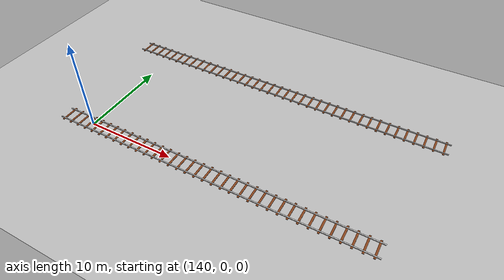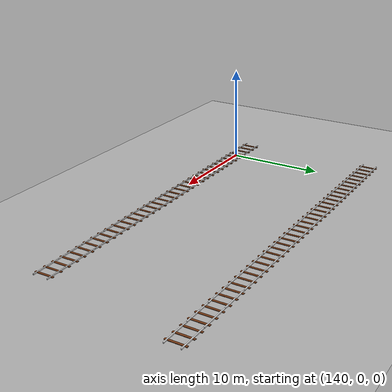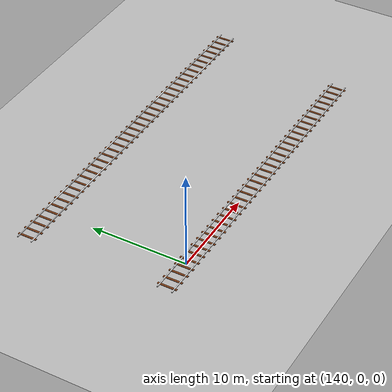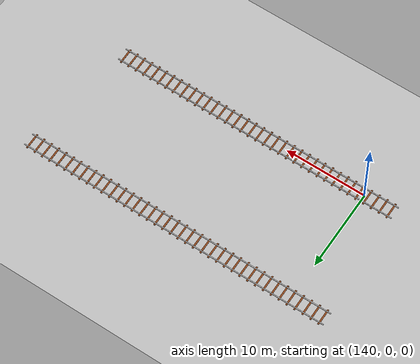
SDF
<sdf version="1.10">
 <world name="myworld">
  <model name="ground_plane">
   <static>true</static>
   <link name="link">
    <collision name="collision">
     <geometry><plane><normal>0 0 1</normal><size>1000 1000</size></plane></geometry>
    </collision>
    <visual name="visual">
     <geometry><plane><normal>0 0 1</normal><size>1000 1000</size></plane></geometry>
     <material>
      <ambient>0.699999988 0.699999988 0.699999988 1</ambient>
      <diffuse>0.699999988 0.699999988 0.699999988 1</diffuse>
     </material>
    </visual>
    <inertial>
     <mass>1</mass>
     <inertia><ixx>1</ixx><ixy>0</ixy><ixz>0</ixz><iyy>1</iyy><iyz>0</iyz><izz>1</izz></inertia>
    </inertial>
   </link>
  </model>
  <model name="rail12_35">
   <static>true</static>
   <pose>137.59800000000001 -0.0277518 0 0 0 0</pose>
   <link name="rail_link">
    <visual name="rail_left">
     <pose>0 0.75 0.050000000000000003 0 0 0</pose>
     <geometry><box><size>3 0.10000000000000001 0.10000000000000001</size></box></geometry>
     <material>
      <ambient>0.800000012 0.800000012 0.800000012 1</ambient>
      <diffuse>0.899999976 0.899999976 0.899999976 1</diffuse>
     </material>
    </visual>
    <visual name="rail_right">
     <pose>0 -0.75 0.050000000000000003 0 0 0</pose>
     <geometry><box><size>3 0.10000000000000001 0.10000000000000001</size></box></geometry>
     <material>
      <ambient>0.800000012 0.800000012 0.800000012 1</ambient>
      <diffuse>0.899999976 0.899999976 0.899999976 1</diffuse>
     </material>
    </visual>
    <visual name="traverse_1">
     <pose>1 0 0.025000000000000001 0 0 0</pose>
     <geometry><box><size>0.20000000000000001 2 0.050000000000000003</size></box></geometry>
     <material>
      <ambient>0.400000006 0.200000003 0.100000001 1</ambient>
      <diffuse>0.5 0.25 0.100000001 1</diffuse>
     </material>
    </visual>
    <visual name="traverse_2">
     <pose>0 0 0.025000000000000001 0 0 0</pose>
     <geometry><box><size>0.20000000000000001 2 0.050000000000000003</size></box></geometry>
     <material>
      <ambient>0.400000006 0.200000003 0.100000001 1</ambient>
      <diffuse>0.5 0.25 0.100000001 1</diffuse>
     </material>
    </visual>
    <visual name="traverse_3">
     <pose>-1 0 0.025000000000000001 0 0 0</pose>
     <geometry><box><size>0.20000000000000001 2 0.050000000000000003</size></box></geometry>
     <material>
      <ambient>0.400000006 0.200000003 0.100000001 1</ambient>
      <diffuse>0.5 0.25 0.100000001 1</diffuse>
     </material>
    </visual>
   </link>
  </model>
  <model name="rail12_36">
   <static>true</static>
   <pose>140.59899999999999 -0.027714300000000001 0 0 0 0</pose>
   <link name="rail_link">
    <visual name="rail_left">
     <pose>0 0.75 0.050000000000000003 0 0 0</pose>
     <geometry><box><size>3 0.10000000000000001 0.10000000000000001</size></box></geometry>
     <material>
      <ambient>0.800000012 0.800000012 0.800000012 1</ambient>
      <diffuse>0.899999976 0.899999976 0.899999976 1</diffuse>
     </material>
    </visual>
    <visual name="rail_right">
     <pose>0 -0.75 0.050000000000000003 0 0 0</pose>
     <geometry><box><size>3 0.10000000000000001 0.10000000000000001</size></box></geometry>
     <material>
      <ambient>0.800000012 0.800000012 0.800000012 1</ambient>
      <diffuse>0.899999976 0.899999976 0.899999976 1</diffuse>
     </material>
    </visual>
    <visual name="traverse_1">
     <pose>1 0 0.025000000000000001 0 0 0</pose>
     <geometry><box><size>0.20000000000000001 2 0.050000000000000003</size></box></geometry>
     <material>
      <ambient>0.400000006 0.200000003 0.100000001 1</ambient>
      <diffuse>0.5 0.25 0.100000001 1</diffuse>
     </material>
    </visual>
    <visual name="traverse_2">
     <pose>0 0 0.025000000000000001 0 0 0</pose>
     <geometry><box><size>0.20000000000000001 2 0.050000000000000003</size></box></geometry>
     <material>
      <ambient>0.400000006 0.200000003 0.100000001 1</ambient>
      <diffuse>0.5 0.25 0.100000001 1</diffuse>
     </material>
    </visual>
    <visual name="traverse_3">
     <pose>-1 0 0.025000000000000001 0 0 0</pose>
     <geometry><box><size>0.20000000000000001 2 0.050000000000000003</size></box></geometry>
     <material>
      <ambient>0.400000006 0.200000003 0.100000001 1</ambient>
      <diffuse>0.5 0.25 0.100000001 1</diffuse>
     </material>
    </visual>
   </link>
  </model>
  <model name="rail12_37">
   <static>true</static>
   <pose>143.583 -0.0283121 0 0 0 0</pose>
   <link name="rail_link">
    <visual name="rail_left">
     <pose>0 0.75 0.050000000000000003 0 0 0</pose>
     <geometry><box><size>3 0.10000000000000001 0.10000000000000001</size></box></geometry>
     <material>
      <ambient>0.800000012 0.800000012 0.800000012 1</ambient>
      <diffuse>0.899999976 0.899999976 0.899999976 1</diffuse>
     </material>
    </visual>
    <visual name="rail_right">
     <pose>0 -0.75 0.050000000000000003 0 0 0</pose>
     <geometry><box><size>3 0.10000000000000001 0.10000000000000001</size></box></geometry>
     <material>
      <ambient>0.800000012 0.800000012 0.800000012 1</ambient>
      <diffuse>0.899999976 0.899999976 0.899999976 1</diffuse>
     </material>
    </visual>
    <visual name="traverse_1">
     <pose>1 0 0.025000000000000001 0 0 0</pose>
     <geometry><box><size>0.20000000000000001 2 0.050000000000000003</size></box></geometry>
     <material>
      <ambient>0.400000006 0.200000003 0.100000001 1</ambient>
      <diffuse>0.5 0.25 0.100000001 1</diffuse>
     </material>
    </visual>
    <visual name="traverse_2">
     <pose>0 0 0.025000000000000001 0 0 0</pose>
     <geometry><box><size>0.20000000000000001 2 0.050000000000000003</size></box></geometry>
     <material>
      <ambient>0.400000006 0.200000003 0.100000001 1</ambient>
      <diffuse>0.5 0.25 0.100000001 1</diffuse>
     </material>
    </visual>
    <visual name="traverse_3">
     <pose>-1 0 0.025000000000000001 0 0 0</pose>
     <geometry><box><size>0.20000000000000001 2 0.050000000000000003</size></box></geometry>
     <material>
      <ambient>0.400000006 0.200000003 0.100000001 1</ambient>
      <diffuse>0.5 0.25 0.100000001 1</diffuse>
     </material>
    </visual>
   </link>
  </model>
  <model name="rail12_37_1">
   <static>true</static>
   <pose>146.566 -0.0293624 0 0 0 0</pose>
   <link name="rail_link">
    <visual name="rail_left">
     <pose>0 0.75 0.050000000000000003 0 0 0</pose>
     <geometry><box><size>3 0.10000000000000001 0.10000000000000001</size></box></geometry>
     <material>
      <ambient>0.800000012 0.800000012 0.800000012 1</ambient>
      <diffuse>0.899999976 0.899999976 0.899999976 1</diffuse>
     </material>
    </visual>
    <visual name="rail_right">
     <pose>0 -0.75 0.050000000000000003 0 0 0</pose>
     <geometry><box><size>3 0.10000000000000001 0.10000000000000001</size></box></geometry>
     <material>
      <ambient>0.800000012 0.800000012 0.800000012 1</ambient>
      <diffuse>0.899999976 0.899999976 0.899999976 1</diffuse>
     </material>
    </visual>
    <visual name="traverse_1">
     <pose>1 0 0.025000000000000001 0 0 0</pose>
     <geometry><box><size>0.20000000000000001 2 0.050000000000000003</size></box></geometry>
     <material>
      <ambient>0.400000006 0.200000003 0.100000001 1</ambient>
      <diffuse>0.5 0.25 0.100000001 1</diffuse>
     </material>
    </visual>
    <visual name="traverse_2">
     <pose>0 0 0.025000000000000001 0 0 0</pose>
     <geometry><box><size>0.20000000000000001 2 0.050000000000000003</size></box></geometry>
     <material>
      <ambient>0.400000006 0.200000003 0.100000001 1</ambient>
      <diffuse>0.5 0.25 0.100000001 1</diffuse>
     </material>
    </visual>
    <visual name="traverse_3">
     <pose>-1 0 0.025000000000000001 0 0 0</pose>
     <geometry><box><size>0.20000000000000001 2 0.050000000000000003</size></box></geometry>
     <material>
      <ambient>0.400000006 0.200000003 0.100000001 1</ambient>
      <diffuse>0.5 0.25 0.100000001 1</diffuse>
     </material>
    </visual>
   </link>
  </model>
  <model name="rail12_37_2">
   <static>true</static>
   <pose>149.56200000000001 -0.028550800000000001 0 0 0 0</pose>
   <link name="rail_link">
    <visual name="rail_left">
     <pose>0 0.75 0.050000000000000003 0 0 0</pose>
     <geometry><box><size>3 0.10000000000000001 0.10000000000000001</size></box></geometry>
     <material>
      <ambient>0.800000012 0.800000012 0.800000012 1</ambient>
      <diffuse>0.899999976 0.899999976 0.899999976 1</diffuse>
     </material>
    </visual>
    <visual name="rail_right">
     <pose>0 -0.75 0.050000000000000003 0 0 0</pose>
     <geometry><box><size>3 0.10000000000000001 0.10000000000000001</size></box></geometry>
     <material>
      <ambient>0.800000012 0.800000012 0.800000012 1</ambient>
      <diffuse>0.899999976 0.899999976 0.899999976 1</diffuse>
     </material>
    </visual>
    <visual name="traverse_1">
     <pose>1 0 0.025000000000000001 0 0 0</pose>
     <geometry><box><size>0.20000000000000001 2 0.050000000000000003</size></box></geometry>
     <material>
      <ambient>0.400000006 0.200000003 0.100000001 1</ambient>
      <diffuse>0.5 0.25 0.100000001 1</diffuse>
     </material>
    </visual>
    <visual name="traverse_2">
     <pose>0 0 0.025000000000000001 0 0 0</pose>
     <geometry><box><size>0.20000000000000001 2 0.050000000000000003</size></box></geometry>
     <material>
      <ambient>0.400000006 0.200000003 0.100000001 1</ambient>
      <diffuse>0.5 0.25 0.100000001 1</diffuse>
     </material>
    </visual>
    <visual name="traverse_3">
     <pose>-1 0 0.025000000000000001 0 0 0</pose>
     <geometry><box><size>0.20000000000000001 2 0.050000000000000003</size></box></geometry>
     <material>
      <ambient>0.400000006 0.200000003 0.100000001 1</ambient>
      <diffuse>0.5 0.25 0.100000001 1</diffuse>
     </material>
    </visual>
   </link>
  </model>
  <model name="rail12_37_3">
   <static>true</static>
   <pose>152.565 -0.029487599999999999 0 0 0 0</pose>
   <link name="rail_link">
    <visual name="rail_left">
     <pose>0 0.75 0.050000000000000003 0 0 0</pose>
     <geometry><box><size>3 0.10000000000000001 0.10000000000000001</size></box></geometry>
     <material>
      <ambient>0.800000012 0.800000012 0.800000012 1</ambient>
      <diffuse>0.899999976 0.899999976 0.899999976 1</diffuse>
     </material>
    </visual>
    <visual name="rail_right">
     <pose>0 -0.75 0.050000000000000003 0 0 0</pose>
     <geometry><box><size>3 0.10000000000000001 0.10000000000000001</size></box></geometry>
     <material>
      <ambient>0.800000012 0.800000012 0.800000012 1</ambient>
      <diffuse>0.899999976 0.899999976 0.899999976 1</diffuse>
     </material>
    </visual>
    <visual name="traverse_1">
     <pose>1 0 0.025000000000000001 0 0 0</pose>
     <geometry><box><size>0.20000000000000001 2 0.050000000000000003</size></box></geometry>
     <material>
      <ambient>0.400000006 0.200000003 0.100000001 1</ambient>
      <diffuse>0.5 0.25 0.100000001 1</diffuse>
     </material>
    </visual>
    <visual name="traverse_2">
     <pose>0 0 0.025000000000000001 0 0 0</pose>
     <geometry><box><size>0.20000000000000001 2 0.050000000000000003</size></box></geometry>
     <material>
      <ambient>0.400000006 0.200000003 0.100000001 1</ambient>
      <diffuse>0.5 0.25 0.100000001 1</diffuse>
     </material>
    </visual>
    <visual name="traverse_3">
     <pose>-1 0 0.025000000000000001 0 0 0</pose>
     <geometry><box><size>0.20000000000000001 2 0.050000000000000003</size></box></geometry>
     <material>
      <ambient>0.400000006 0.200000003 0.100000001 1</ambient>
      <diffuse>0.5 0.25 0.100000001 1</diffuse>
     </material>
    </visual>
   </link>
  </model>
  <model name="rail12_37_4">
   <static>true</static>
   <pose>155.566 -0.026680100000000002 0 0 0 0</pose>
   <link name="rail_link">
    <visual name="rail_left">
     <pose>0 0.75 0.050000000000000003 0 0 0</pose>
     <geometry><box><size>3 0.10000000000000001 0.10000000000000001</size></box></geometry>
     <material>
      <ambient>0.800000012 0.800000012 0.800000012 1</ambient>
      <diffuse>0.899999976 0.899999976 0.899999976 1</diffuse>
     </material>
    </visual>
    <visual name="rail_right">
     <pose>0 -0.75 0.050000000000000003 0 0 0</pose>
     <geometry><box><size>3 0.10000000000000001 0.10000000000000001</size></box></geometry>
     <material>
      <ambient>0.800000012 0.800000012 0.800000012 1</ambient>
      <diffuse>0.899999976 0.899999976 0.899999976 1</diffuse>
     </material>
    </visual>
    <visual name="traverse_1">
     <pose>1 0 0.025000000000000001 0 0 0</pose>
     <geometry><box><size>0.20000000000000001 2 0.050000000000000003</size></box></geometry>
     <material>
      <ambient>0.400000006 0.200000003 0.100000001 1</ambient>
      <diffuse>0.5 0.25 0.100000001 1</diffuse>
     </material>
    </visual>
    <visual name="traverse_2">
     <pose>0 0 0.025000000000000001 0 0 0</pose>
     <geometry><box><size>0.20000000000000001 2 0.050000000000000003</size></box></geometry>
     <material>
      <ambient>0.400000006 0.200000003 0.100000001 1</ambient>
      <diffuse>0.5 0.25 0.100000001 1</diffuse>
     </material>
    </visual>
    <visual name="traverse_3">
     <pose>-1 0 0.025000000000000001 0 0 0</pose>
     <geometry><box><size>0.20000000000000001 2 0.050000000000000003</size></box></geometry>
     <material>
      <ambient>0.400000006 0.200000003 0.100000001 1</ambient>
      <diffuse>0.5 0.25 0.100000001 1</diffuse>
     </material>
    </visual>
   </link>
  </model>
  <model name="rail12_37_5">
   <static>true</static>
   <pose>158.55699999999999 -0.0285592 0 0 0 0</pose>
   <link name="rail_link">
    <visual name="rail_left">
     <pose>0 0.75 0.050000000000000003 0 0 0</pose>
     <geometry><box><size>3 0.10000000000000001 0.10000000000000001</size></box></geometry>
     <material>
      <ambient>0.800000012 0.800000012 0.800000012 1</ambient>
      <diffuse>0.899999976 0.899999976 0.899999976 1</diffuse>
     </material>
    </visual>
    <visual name="rail_right">
     <pose>0 -0.75 0.050000000000000003 0 0 0</pose>
     <geometry><box><size>3 0.10000000000000001 0.10000000000000001</size></box></geometry>
     <material>
      <ambient>0.800000012 0.800000012 0.800000012 1</ambient>
      <diffuse>0.899999976 0.899999976 0.899999976 1</diffuse>
     </material>
    </visual>
    <visual name="traverse_1">
     <pose>1 0 0.025000000000000001 0 0 0</pose>
     <geometry><box><size>0.20000000000000001 2 0.050000000000000003</size></box></geometry>
     <material>
      <ambient>0.400000006 0.200000003 0.100000001 1</ambient>
      <diffuse>0.5 0.25 0.100000001 1</diffuse>
     </material>
    </visual>
    <visual name="traverse_2">
     <pose>0 0 0.025000000000000001 0 0 0</pose>
     <geometry><box><size>0.20000000000000001 2 0.050000000000000003</size></box></geometry>
     <material>
      <ambient>0.400000006 0.200000003 0.100000001 1</ambient>
      <diffuse>0.5 0.25 0.100000001 1</diffuse>
     </material>
    </visual>
    <visual name="traverse_3">
     <pose>-1 0 0.025000000000000001 0 0 0</pose>
     <geometry><box><size>0.20000000000000001 2 0.050000000000000003</size></box></geometry>
     <material>
      <ambient>0.400000006 0.200000003 0.100000001 1</ambient>
      <diffuse>0.5 0.25 0.100000001 1</diffuse>
     </material>
    </visual>
   </link>
  </model>
  <model name="rail12_37_6">
   <static>true</static>
   <pose>161.55099999999999 -0.028076899999999998 0 0 0 0</pose>
   <link name="rail_link">
    <visual name="rail_left">
     <pose>0 0.75 0.050000000000000003 0 0 0</pose>
     <geometry><box><size>3 0.10000000000000001 0.10000000000000001</size></box></geometry>
     <material>
      <ambient>0.800000012 0.800000012 0.800000012 1</ambient>
      <diffuse>0.899999976 0.899999976 0.899999976 1</diffuse>
     </material>
    </visual>
    <visual name="rail_right">
     <pose>0 -0.75 0.050000000000000003 0 0 0</pose>
     <geometry><box><size>3 0.10000000000000001 0.10000000000000001</size></box></geometry>
     <material>
      <ambient>0.800000012 0.800000012 0.800000012 1</ambient>
      <diffuse>0.899999976 0.899999976 0.899999976 1</diffuse>
     </material>
    </visual>
    <visual name="traverse_1">
     <pose>1 0 0.025000000000000001 0 0 0</pose>
     <geometry><box><size>0.20000000000000001 2 0.050000000000000003</size></box></geometry>
     <material>
      <ambient>0.400000006 0.200000003 0.100000001 1</ambient>
      <diffuse>0.5 0.25 0.100000001 1</diffuse>
     </material>
    </visual>
    <visual name="traverse_2">
     <pose>0 0 0.025000000000000001 0 0 0</pose>
     <geometry><box><size>0.20000000000000001 2 0.050000000000000003</size></box></geometry>
     <material>
      <ambient>0.400000006 0.200000003 0.100000001 1</ambient>
      <diffuse>0.5 0.25 0.100000001 1</diffuse>
     </material>
    </visual>
    <visual name="traverse_3">
     <pose>-1 0 0.025000000000000001 0 0 0</pose>
     <geometry><box><size>0.20000000000000001 2 0.050000000000000003</size></box></geometry>
     <material>
      <ambient>0.400000006 0.200000003 0.100000001 1</ambient>
      <diffuse>0.5 0.25 0.100000001 1</diffuse>
     </material>
    </visual>
   </link>
  </model>
  <model name="rail12_37_7">
   <static>true</static>
   <pose>164.547 -0.0255289 0 0 0 0</pose>
   <link name="rail_link">
    <visual name="rail_left">
     <pose>0 0.75 0.050000000000000003 0 0 0</pose>
     <geometry><box><size>3 0.10000000000000001 0.10000000000000001</size></box></geometry>
     <material>
      <ambient>0.800000012 0.800000012 0.800000012 1</ambient>
      <diffuse>0.899999976 0.899999976 0.899999976 1</diffuse>
     </material>
    </visual>
    <visual name="rail_right">
     <pose>0 -0.75 0.050000000000000003 0 0 0</pose>
     <geometry><box><size>3 0.10000000000000001 0.10000000000000001</size></box></geometry>
     <material>
      <ambient>0.800000012 0.800000012 0.800000012 1</ambient>
      <diffuse>0.899999976 0.899999976 0.899999976 1</diffuse>
     </material>
    </visual>
    <visual name="traverse_1">
     <pose>1 0 0.025000000000000001 0 0 0</pose>
     <geometry><box><size>0.20000000000000001 2 0.050000000000000003</size></box></geometry>
     <material>
      <ambient>0.400000006 0.200000003 0.100000001 1</ambient>
      <diffuse>0.5 0.25 0.100000001 1</diffuse>
     </material>
    </visual>
    <visual name="traverse_2">
     <pose>0 0 0.025000000000000001 0 0 0</pose>
     <geometry><box><size>0.20000000000000001 2 0.050000000000000003</size></box></geometry>
     <material>
      <ambient>0.400000006 0.200000003 0.100000001 1</ambient>
      <diffuse>0.5 0.25 0.100000001 1</diffuse>
     </material>
    </visual>
    <visual name="traverse_3">
     <pose>-1 0 0.025000000000000001 0 0 0</pose>
     <geometry><box><size>0.20000000000000001 2 0.050000000000000003</size></box></geometry>
     <material>
      <ambient>0.400000006 0.200000003 0.100000001 1</ambient>
      <diffuse>0.5 0.25 0.100000001 1</diffuse>
     </material>
    </visual>
   </link>
  </model>
  <model name="rail12_37_8">
   <static>true</static>
   <pose>167.542 -0.027460600000000002 0 0 0 0</pose>
   <link name="rail_link">
    <visual name="rail_left">
     <pose>0 0.75 0.050000000000000003 0 0 0</pose>
     <geometry><box><size>3 0.10000000000000001 0.10000000000000001</size></box></geometry>
     <material>
      <ambient>0.800000012 0.800000012 0.800000012 1</ambient>
      <diffuse>0.899999976 0.899999976 0.899999976 1</diffuse>
     </material>
    </visual>
    <visual name="rail_right">
     <pose>0 -0.75 0.050000000000000003 0 0 0</pose>
     <geometry><box><size>3 0.10000000000000001 0.10000000000000001</size></box></geometry>
     <material>
      <ambient>0.800000012 0.800000012 0.800000012 1</ambient>
      <diffuse>0.899999976 0.899999976 0.899999976 1</diffuse>
     </material>
    </visual>
    <visual name="traverse_1">
     <pose>1 0 0.025000000000000001 0 0 0</pose>
     <geometry><box><size>0.20000000000000001 2 0.050000000000000003</size></box></geometry>
     <material>
      <ambient>0.400000006 0.200000003 0.100000001 1</ambient>
      <diffuse>0.5 0.25 0.100000001 1</diffuse>
     </material>
    </visual>
    <visual name="traverse_2">
     <pose>0 0 0.025000000000000001 0 0 0</pose>
     <geometry><box><size>0.20000000000000001 2 0.050000000000000003</size></box></geometry>
     <material>
      <ambient>0.400000006 0.200000003 0.100000001 1</ambient>
      <diffuse>0.5 0.25 0.100000001 1</diffuse>
     </material>
    </visual>
    <visual name="traverse_3">
     <pose>-1 0 0.025000000000000001 0 0 0</pose>
     <geometry><box><size>0.20000000000000001 2 0.050000000000000003</size></box></geometry>
     <material>
      <ambient>0.400000006 0.200000003 0.100000001 1</ambient>
      <diffuse>0.5 0.25 0.100000001 1</diffuse>
     </material>
    </visual>
   </link>
  </model>
  <model name="rail12_37_9">
   <static>true</static>
   <pose>170.53700000000001 -0.027081399999999999 0 0 0 0</pose>
   <link name="rail_link">
    <visual name="rail_left">
     <pose>0 0.75 0.050000000000000003 0 0 0</pose>
     <geometry><box><size>3 0.10000000000000001 0.10000000000000001</size></box></geometry>
     <material>
      <ambient>0.800000012 0.800000012 0.800000012 1</ambient>
      <diffuse>0.899999976 0.899999976 0.899999976 1</diffuse>
     </material>
    </visual>
    <visual name="rail_right">
     <pose>0 -0.75 0.050000000000000003 0 0 0</pose>
     <geometry><box><size>3 0.10000000000000001 0.10000000000000001</size></box></geometry>
     <material>
      <ambient>0.800000012 0.800000012 0.800000012 1</ambient>
      <diffuse>0.899999976 0.899999976 0.899999976 1</diffuse>
     </material>
    </visual>
    <visual name="traverse_1">
     <pose>1 0 0.025000000000000001 0 0 0</pose>
     <geometry><box><size>0.20000000000000001 2 0.050000000000000003</size></box></geometry>
     <material>
      <ambient>0.400000006 0.200000003 0.100000001 1</ambient>
      <diffuse>0.5 0.25 0.100000001 1</diffuse>
     </material>
    </visual>
    <visual name="traverse_2">
     <pose>0 0 0.025000000000000001 0 0 0</pose>
     <geometry><box><size>0.20000000000000001 2 0.050000000000000003</size></box></geometry>
     <material>
      <ambient>0.400000006 0.200000003 0.100000001 1</ambient>
      <diffuse>0.5 0.25 0.100000001 1</diffuse>
     </material>
    </visual>
    <visual name="traverse_3">
     <pose>-1 0 0.025000000000000001 0 0 0</pose>
     <geometry><box><size>0.20000000000000001 2 0.050000000000000003</size></box></geometry>
     <material>
      <ambient>0.400000006 0.200000003 0.100000001 1</ambient>
      <diffuse>0.5 0.25 0.100000001 1</diffuse>
     </material>
    </visual>
   </link>
  </model>
  <model name="rail12_37_69">
   <static>true</static>
   <pose>137.012 14.6077599999999999 0 0 0 0</pose>
   <link name="rail_link">
    <visual name="rail_left">
     <pose>0 0.75 0.050000000000000003 0 0 0</pose>
     <geometry><box><size>3 0.10000000000000001 0.10000000000000001</size></box></geometry>
     <material>
      <ambient>0.800000012 0.800000012 0.800000012 1</ambient>
      <diffuse>0.899999976 0.899999976 0.899999976 1</diffuse>
     </material>
    </visual>
    <visual name="rail_right">
     <pose>0 -0.75 0.050000000000000003 0 0 0</pose>
     <geometry><box><size>3 0.10000000000000001 0.10000000000000001</size></box></geometry>
     <material>
      <ambient>0.800000012 0.800000012 0.800000012 1</ambient>
      <diffuse>0.899999976 0.899999976 0.899999976 1</diffuse>
     </material>
    </visual>
    <visual name="traverse_1">
     <pose>1 0 0.025000000000000001 0 0 0</pose>
     <geometry><box><size>0.20000000000000001 2 0.050000000000000003</size></box></geometry>
     <material>
      <ambient>0.400000006 0.200000003 0.100000001 1</ambient>
      <diffuse>0.5 0.25 0.100000001 1</diffuse>
     </material>
    </visual>
    <visual name="traverse_2">
     <pose>0 0 0.025000000000000001 0 0 0</pose>
     <geometry><box><size>0.20000000000000001 2 0.050000000000000003</size></box></geometry>
     <material>
      <ambient>0.400000006 0.200000003 0.100000001 1</ambient>
      <diffuse>0.5 0.25 0.100000001 1</diffuse>
     </material>
    </visual>
    <visual name="traverse_3">
     <pose>-1 0 0.025000000000000001 0 0 0</pose>
     <geometry><box><size>0.20000000000000001 2 0.050000000000000003</size></box></geometry>
     <material>
      <ambient>0.400000006 0.200000003 0.100000001 1</ambient>
      <diffuse>0.5 0.25 0.100000001 1</diffuse>
     </material>
    </visual>
   </link>
  </model>
  <model name="rail12_37_70">
   <static>true</static>
   <pose>140.02099999999999 14.6110699999999998 0 0 0 0</pose>
   <link name="rail_link">
    <visual name="rail_left">
     <pose>0 0.75 0.050000000000000003 0 0 0</pose>
     <geometry><box><size>3 0.10000000000000001 0.10000000000000001</size></box></geometry>
     <material>
      <ambient>0.800000012 0.800000012 0.800000012 1</ambient>
      <diffuse>0.899999976 0.899999976 0.899999976 1</diffuse>
     </material>
    </visual>
    <visual name="rail_right">
     <pose>0 -0.75 0.050000000000000003 0 0 0</pose>
     <geometry><box><size>3 0.10000000000000001 0.10000000000000001</size></box></geometry>
     <material>
      <ambient>0.800000012 0.800000012 0.800000012 1</ambient>
      <diffuse>0.899999976 0.899999976 0.899999976 1</diffuse>
     </material>
    </visual>
    <visual name="traverse_1">
     <pose>1 0 0.025000000000000001 0 0 0</pose>
     <geometry><box><size>0.20000000000000001 2 0.050000000000000003</size></box></geometry>
     <material>
      <ambient>0.400000006 0.200000003 0.100000001 1</ambient>
      <diffuse>0.5 0.25 0.100000001 1</diffuse>
     </material>
    </visual>
    <visual name="traverse_2">
     <pose>0 0 0.025000000000000001 0 0 0</pose>
     <geometry><box><size>0.20000000000000001 2 0.050000000000000003</size></box></geometry>
     <material>
      <ambient>0.400000006 0.200000003 0.100000001 1</ambient>
      <diffuse>0.5 0.25 0.100000001 1</diffuse>
     </material>
    </visual>
    <visual name="traverse_3">
     <pose>-1 0 0.025000000000000001 0 0 0</pose>
     <geometry><box><size>0.20000000000000001 2 0.050000000000000003</size></box></geometry>
     <material>
      <ambient>0.400000006 0.200000003 0.100000001 1</ambient>
      <diffuse>0.5 0.25 0.100000001 1</diffuse>
     </material>
    </visual>
   </link>
  </model>
  <model name="rail12_37_71">
   <static>true</static>
   <pose>143.012 14.6105600000000004 0 0 0 0</pose>
   <link name="rail_link">
    <visual name="rail_left">
     <pose>0 0.75 0.050000000000000003 0 0 0</pose>
     <geometry><box><size>3 0.10000000000000001 0.10000000000000001</size></box></geometry>
     <material>
      <ambient>0.800000012 0.800000012 0.800000012 1</ambient>
      <diffuse>0.899999976 0.899999976 0.899999976 1</diffuse>
     </material>
    </visual>
    <visual name="rail_right">
     <pose>0 -0.75 0.050000000000000003 0 0 0</pose>
     <geometry><box><size>3 0.10000000000000001 0.10000000000000001</size></box></geometry>
     <material>
      <ambient>0.800000012 0.800000012 0.800000012 1</ambient>
      <diffuse>0.899999976 0.899999976 0.899999976 1</diffuse>
     </material>
    </visual>
    <visual name="traverse_1">
     <pose>1 0 0.025000000000000001 0 0 0</pose>
     <geometry><box><size>0.20000000000000001 2 0.050000000000000003</size></box></geometry>
     <material>
      <ambient>0.400000006 0.200000003 0.100000001 1</ambient>
      <diffuse>0.5 0.25 0.100000001 1</diffuse>
     </material>
    </visual>
    <visual name="traverse_2">
     <pose>0 0 0.025000000000000001 0 0 0</pose>
     <geometry><box><size>0.20000000000000001 2 0.050000000000000003</size></box></geometry>
     <material>
      <ambient>0.400000006 0.200000003 0.100000001 1</ambient>
      <diffuse>0.5 0.25 0.100000001 1</diffuse>
     </material>
    </visual>
    <visual name="traverse_3">
     <pose>-1 0 0.025000000000000001 0 0 0</pose>
     <geometry><box><size>0.20000000000000001 2 0.050000000000000003</size></box></geometry>
     <material>
      <ambient>0.400000006 0.200000003 0.100000001 1</ambient>
      <diffuse>0.5 0.25 0.100000001 1</diffuse>
     </material>
    </visual>
   </link>
  </model>
  <model name="rail12_37_72">
   <static>true</static>
   <pose>145.999 14.6132299999999997 0 0 0 0</pose>
   <link name="rail_link">
    <visual name="rail_left">
     <pose>0 0.75 0.050000000000000003 0 0 0</pose>
     <geometry><box><size>3 0.10000000000000001 0.10000000000000001</size></box></geometry>
     <material>
      <ambient>0.800000012 0.800000012 0.800000012 1</ambient>
      <diffuse>0.899999976 0.899999976 0.899999976 1</diffuse>
     </material>
    </visual>
    <visual name="rail_right">
     <pose>0 -0.75 0.050000000000000003 0 0 0</pose>
     <geometry><box><size>3 0.10000000000000001 0.10000000000000001</size></box></geometry>
     <material>
      <ambient>0.800000012 0.800000012 0.800000012 1</ambient>
      <diffuse>0.899999976 0.899999976 0.899999976 1</diffuse>
     </material>
    </visual>
    <visual name="traverse_1">
     <pose>1 0 0.025000000000000001 0 0 0</pose>
     <geometry><box><size>0.20000000000000001 2 0.050000000000000003</size></box></geometry>
     <material>
      <ambient>0.400000006 0.200000003 0.100000001 1</ambient>
      <diffuse>0.5 0.25 0.100000001 1</diffuse>
     </material>
    </visual>
    <visual name="traverse_2">
     <pose>0 0 0.025000000000000001 0 0 0</pose>
     <geometry><box><size>0.20000000000000001 2 0.050000000000000003</size></box></geometry>
     <material>
      <ambient>0.400000006 0.200000003 0.100000001 1</ambient>
      <diffuse>0.5 0.25 0.100000001 1</diffuse>
     </material>
    </visual>
    <visual name="traverse_3">
     <pose>-1 0 0.025000000000000001 0 0 0</pose>
     <geometry><box><size>0.20000000000000001 2 0.050000000000000003</size></box></geometry>
     <material>
      <ambient>0.400000006 0.200000003 0.100000001 1</ambient>
      <diffuse>0.5 0.25 0.100000001 1</diffuse>
     </material>
    </visual>
   </link>
  </model>
  <model name="rail12_37_73">
   <static>true</static>
   <pose>148.983 14.6130000000000004 0 0 0 0</pose>
   <link name="rail_link">
    <visual name="rail_left">
     <pose>0 0.75 0.050000000000000003 0 0 0</pose>
     <geometry><box><size>3 0.10000000000000001 0.10000000000000001</size></box></geometry>
     <material>
      <ambient>0.800000012 0.800000012 0.800000012 1</ambient>
      <diffuse>0.899999976 0.899999976 0.899999976 1</diffuse>
     </material>
    </visual>
    <visual name="rail_right">
     <pose>0 -0.75 0.050000000000000003 0 0 0</pose>
     <geometry><box><size>3 0.10000000000000001 0.10000000000000001</size></box></geometry>
     <material>
      <ambient>0.800000012 0.800000012 0.800000012 1</ambient>
      <diffuse>0.899999976 0.899999976 0.899999976 1</diffuse>
     </material>
    </visual>
    <visual name="traverse_1">
     <pose>1 0 0.025000000000000001 0 0 0</pose>
     <geometry><box><size>0.20000000000000001 2 0.050000000000000003</size></box></geometry>
     <material>
      <ambient>0.400000006 0.200000003 0.100000001 1</ambient>
      <diffuse>0.5 0.25 0.100000001 1</diffuse>
     </material>
    </visual>
    <visual name="traverse_2">
     <pose>0 0 0.025000000000000001 0 0 0</pose>
     <geometry><box><size>0.20000000000000001 2 0.050000000000000003</size></box></geometry>
     <material>
      <ambient>0.400000006 0.200000003 0.100000001 1</ambient>
      <diffuse>0.5 0.25 0.100000001 1</diffuse>
     </material>
    </visual>
    <visual name="traverse_3">
     <pose>-1 0 0.025000000000000001 0 0 0</pose>
     <geometry><box><size>0.20000000000000001 2 0.050000000000000003</size></box></geometry>
     <material>
      <ambient>0.400000006 0.200000003 0.100000001 1</ambient>
      <diffuse>0.5 0.25 0.100000001 1</diffuse>
     </material>
    </visual>
   </link>
  </model>
  <model name="rail12_37_74">
   <static>true</static>
   <pose>151.97999999999999 14.6094600000000003 0 0 0 0</pose>
   <link name="rail_link">
    <visual name="rail_left">
     <pose>0 0.75 0.050000000000000003 0 0 0</pose>
     <geometry><box><size>3 0.10000000000000001 0.10000000000000001</size></box></geometry>
     <material>
      <ambient>0.800000012 0.800000012 0.800000012 1</ambient>
      <diffuse>0.899999976 0.899999976 0.899999976 1</diffuse>
     </material>
    </visual>
    <visual name="rail_right">
     <pose>0 -0.75 0.050000000000000003 0 0 0</pose>
     <geometry><box><size>3 0.10000000000000001 0.10000000000000001</size></box></geometry>
     <material>
      <ambient>0.800000012 0.800000012 0.800000012 1</ambient>
      <diffuse>0.899999976 0.899999976 0.899999976 1</diffuse>
     </material>
    </visual>
    <visual name="traverse_1">
     <pose>1 0 0.025000000000000001 0 0 0</pose>
     <geometry><box><size>0.20000000000000001 2 0.050000000000000003</size></box></geometry>
     <material>
      <ambient>0.400000006 0.200000003 0.100000001 1</ambient>
      <diffuse>0.5 0.25 0.100000001 1</diffuse>
     </material>
    </visual>
    <visual name="traverse_2">
     <pose>0 0 0.025000000000000001 0 0 0</pose>
     <geometry><box><size>0.20000000000000001 2 0.050000000000000003</size></box></geometry>
     <material>
      <ambient>0.400000006 0.200000003 0.100000001 1</ambient>
      <diffuse>0.5 0.25 0.100000001 1</diffuse>
     </material>
    </visual>
    <visual name="traverse_3">
     <pose>-1 0 0.025000000000000001 0 0 0</pose>
     <geometry><box><size>0.20000000000000001 2 0.050000000000000003</size></box></geometry>
     <material>
      <ambient>0.400000006 0.200000003 0.100000001 1</ambient>
      <diffuse>0.5 0.25 0.100000001 1</diffuse>
     </material>
    </visual>
   </link>
  </model>
  <model name="rail12_37_75">
   <static>true</static>
   <pose>154.971 14.6070900000000004 0 0 0 0</pose>
   <link name="rail_link">
    <visual name="rail_left">
     <pose>0 0.75 0.050000000000000003 0 0 0</pose>
     <geometry><box><size>3 0.10000000000000001 0.10000000000000001</size></box></geometry>
     <material>
      <ambient>0.800000012 0.800000012 0.800000012 1</ambient>
      <diffuse>0.899999976 0.899999976 0.899999976 1</diffuse>
     </material>
    </visual>
    <visual name="rail_right">
     <pose>0 -0.75 0.050000000000000003 0 0 0</pose>
     <geometry><box><size>3 0.10000000000000001 0.10000000000000001</size></box></geometry>
     <material>
      <ambient>0.800000012 0.800000012 0.800000012 1</ambient>
      <diffuse>0.899999976 0.899999976 0.899999976 1</diffuse>
     </material>
    </visual>
    <visual name="traverse_1">
     <pose>1 0 0.025000000000000001 0 0 0</pose>
     <geometry><box><size>0.20000000000000001 2 0.050000000000000003</size></box></geometry>
     <material>
      <ambient>0.400000006 0.200000003 0.100000001 1</ambient>
      <diffuse>0.5 0.25 0.100000001 1</diffuse>
     </material>
    </visual>
    <visual name="traverse_2">
     <pose>0 0 0.025000000000000001 0 0 0</pose>
     <geometry><box><size>0.20000000000000001 2 0.050000000000000003</size></box></geometry>
     <material>
      <ambient>0.400000006 0.200000003 0.100000001 1</ambient>
      <diffuse>0.5 0.25 0.100000001 1</diffuse>
     </material>
    </visual>
    <visual name="traverse_3">
     <pose>-1 0 0.025000000000000001 0 0 0</pose>
     <geometry><box><size>0.20000000000000001 2 0.050000000000000003</size></box></geometry>
     <material>
      <ambient>0.400000006 0.200000003 0.100000001 1</ambient>
      <diffuse>0.5 0.25 0.100000001 1</diffuse>
     </material>
    </visual>
   </link>
  </model>
  <model name="rail12_37_76">
   <static>true</static>
   <pose>157.96799999999999 14.60989 0 0 0 0</pose>
   <link name="rail_link">
    <visual name="rail_left">
     <pose>0 0.75 0.050000000000000003 0 0 0</pose>
     <geometry><box><size>3 0.10000000000000001 0.10000000000000001</size></box></geometry>
     <material>
      <ambient>0.800000012 0.800000012 0.800000012 1</ambient>
      <diffuse>0.899999976 0.899999976 0.899999976 1</diffuse>
     </material>
    </visual>
    <visual name="rail_right">
     <pose>0 -0.75 0.050000000000000003 0 0 0</pose>
     <geometry><box><size>3 0.10000000000000001 0.10000000000000001</size></box></geometry>
     <material>
      <ambient>0.800000012 0.800000012 0.800000012 1</ambient>
      <diffuse>0.899999976 0.899999976 0.899999976 1</diffuse>
     </material>
    </visual>
    <visual name="traverse_1">
     <pose>1 0 0.025000000000000001 0 0 0</pose>
     <geometry><box><size>0.20000000000000001 2 0.050000000000000003</size></box></geometry>
     <material>
      <ambient>0.400000006 0.200000003 0.100000001 1</ambient>
      <diffuse>0.5 0.25 0.100000001 1</diffuse>
     </material>
    </visual>
    <visual name="traverse_2">
     <pose>0 0 0.025000000000000001 0 0 0</pose>
     <geometry><box><size>0.20000000000000001 2 0.050000000000000003</size></box></geometry>
     <material>
      <ambient>0.400000006 0.200000003 0.100000001 1</ambient>
      <diffuse>0.5 0.25 0.100000001 1</diffuse>
     </material>
    </visual>
    <visual name="traverse_3">
     <pose>-1 0 0.025000000000000001 0 0 0</pose>
     <geometry><box><size>0.20000000000000001 2 0.050000000000000003</size></box></geometry>
     <material>
      <ambient>0.400000006 0.200000003 0.100000001 1</ambient>
      <diffuse>0.5 0.25 0.100000001 1</diffuse>
     </material>
    </visual>
   </link>
  </model>
  <model name="rail12_37_77">
   <static>true</static>
   <pose>160.95599999999999 14.6094200000000001 0 0 0 0</pose>
   <link name="rail_link">
    <visual name="rail_left">
     <pose>0 0.75 0.050000000000000003 0 0 0</pose>
     <geometry><box><size>3 0.10000000000000001 0.10000000000000001</size></box></geometry>
     <material>
      <ambient>0.800000012 0.800000012 0.800000012 1</ambient>
      <diffuse>0.899999976 0.899999976 0.899999976 1</diffuse>
     </material>
    </visual>
    <visual name="rail_right">
     <pose>0 -0.75 0.050000000000000003 0 0 0</pose>
     <geometry><box><size>3 0.10000000000000001 0.10000000000000001</size></box></geometry>
     <material>
      <ambient>0.800000012 0.800000012 0.800000012 1</ambient>
      <diffuse>0.899999976 0.899999976 0.899999976 1</diffuse>
     </material>
    </visual>
    <visual name="traverse_1">
     <pose>1 0 0.025000000000000001 0 0 0</pose>
     <geometry><box><size>0.20000000000000001 2 0.050000000000000003</size></box></geometry>
     <material>
      <ambient>0.400000006 0.200000003 0.100000001 1</ambient>
      <diffuse>0.5 0.25 0.100000001 1</diffuse>
     </material>
    </visual>
    <visual name="traverse_2">
     <pose>0 0 0.025000000000000001 0 0 0</pose>
     <geometry><box><size>0.20000000000000001 2 0.050000000000000003</size></box></geometry>
     <material>
      <ambient>0.400000006 0.200000003 0.100000001 1</ambient>
      <diffuse>0.5 0.25 0.100000001 1</diffuse>
     </material>
    </visual>
    <visual name="traverse_3">
     <pose>-1 0 0.025000000000000001 0 0 0</pose>
     <geometry><box><size>0.20000000000000001 2 0.050000000000000003</size></box></geometry>
     <material>
      <ambient>0.400000006 0.200000003 0.100000001 1</ambient>
      <diffuse>0.5 0.25 0.100000001 1</diffuse>
     </material>
    </visual>
   </link>
  </model>
  <model name="rail12_37_78">
   <static>true</static>
   <pose>163.953 14.6078000000000001 0 0 0 0</pose>
   <link name="rail_link">
    <visual name="rail_left">
     <pose>0 0.75 0.050000000000000003 0 0 0</pose>
     <geometry><box><size>3 0.10000000000000001 0.10000000000000001</size></box></geometry>
     <material>
      <ambient>0.800000012 0.800000012 0.800000012 1</ambient>
      <diffuse>0.899999976 0.899999976 0.899999976 1</diffuse>
     </material>
    </visual>
    <visual name="rail_right">
     <pose>0 -0.75 0.050000000000000003 0 0 0</pose>
     <geometry><box><size>3 0.10000000000000001 0.10000000000000001</size></box></geometry>
     <material>
      <ambient>0.800000012 0.800000012 0.800000012 1</ambient>
      <diffuse>0.899999976 0.899999976 0.899999976 1</diffuse>
     </material>
    </visual>
    <visual name="traverse_1">
     <pose>1 0 0.025000000000000001 0 0 0</pose>
     <geometry><box><size>0.20000000000000001 2 0.050000000000000003</size></box></geometry>
     <material>
      <ambient>0.400000006 0.200000003 0.100000001 1</ambient>
      <diffuse>0.5 0.25 0.100000001 1</diffuse>
     </material>
    </visual>
    <visual name="traverse_2">
     <pose>0 0 0.025000000000000001 0 0 0</pose>
     <geometry><box><size>0.20000000000000001 2 0.050000000000000003</size></box></geometry>
     <material>
      <ambient>0.400000006 0.200000003 0.100000001 1</ambient>
      <diffuse>0.5 0.25 0.100000001 1</diffuse>
     </material>
    </visual>
    <visual name="traverse_3">
     <pose>-1 0 0.025000000000000001 0 0 0</pose>
     <geometry><box><size>0.20000000000000001 2 0.050000000000000003</size></box></geometry>
     <material>
      <ambient>0.400000006 0.200000003 0.100000001 1</ambient>
      <diffuse>0.5 0.25 0.100000001 1</diffuse>
     </material>
    </visual>
   </link>
  </model>
  <model name="rail12_37_79">
   <static>true</static>
   <pose>166.929 14.6069000000000004 0 0 0 0</pose>
   <link name="rail_link">
    <visual name="rail_left">
     <pose>0 0.75 0.050000000000000003 0 0 0</pose>
     <geometry><box><size>3 0.10000000000000001 0.10000000000000001</size></box></geometry>
     <material>
      <ambient>0.800000012 0.800000012 0.800000012 1</ambient>
      <diffuse>0.899999976 0.899999976 0.899999976 1</diffuse>
     </material>
    </visual>
    <visual name="rail_right">
     <pose>0 -0.75 0.050000000000000003 0 0 0</pose>
     <geometry><box><size>3 0.10000000000000001 0.10000000000000001</size></box></geometry>
     <material>
      <ambient>0.800000012 0.800000012 0.800000012 1</ambient>
      <diffuse>0.899999976 0.899999976 0.899999976 1</diffuse>
     </material>
    </visual>
    <visual name="traverse_1">
     <pose>1 0 0.025000000000000001 0 0 0</pose>
     <geometry><box><size>0.20000000000000001 2 0.050000000000000003</size></box></geometry>
     <material>
      <ambient>0.400000006 0.200000003 0.100000001 1</ambient>
      <diffuse>0.5 0.25 0.100000001 1</diffuse>
     </material>
    </visual>
    <visual name="traverse_2">
     <pose>0 0 0.025000000000000001 0 0 0</pose>
     <geometry><box><size>0.20000000000000001 2 0.050000000000000003</size></box></geometry>
     <material>
      <ambient>0.400000006 0.200000003 0.100000001 1</ambient>
      <diffuse>0.5 0.25 0.100000001 1</diffuse>
     </material>
    </visual>
    <visual name="traverse_3">
     <pose>-1 0 0.025000000000000001 0 0 0</pose>
     <geometry><box><size>0.20000000000000001 2 0.050000000000000003</size></box></geometry>
     <material>
      <ambient>0.400000006 0.200000003 0.100000001 1</ambient>
      <diffuse>0.5 0.25 0.100000001 1</diffuse>
     </material>
    </visual>
   </link>
  </model>
  <model name="rail12_37_80">
   <static>true</static>
   <pose>169.923 14.6043399999999997 0 0 0 0</pose>
   <link name="rail_link">
    <visual name="rail_left">
     <pose>0 0.75 0.050000000000000003 0 0 0</pose>
     <geometry><box><size>3 0.10000000000000001 0.10000000000000001</size></box></geometry>
     <material>
      <ambient>0.800000012 0.800000012 0.800000012 1</ambient>
      <diffuse>0.899999976 0.899999976 0.899999976 1</diffuse>
     </material>
    </visual>
    <visual name="rail_right">
     <pose>0 -0.75 0.050000000000000003 0 0 0</pose>
     <geometry><box><size>3 0.10000000000000001 0.10000000000000001</size></box></geometry>
     <material>
      <ambient>0.800000012 0.800000012 0.800000012 1</ambient>
      <diffuse>0.899999976 0.899999976 0.899999976 1</diffuse>
     </material>
    </visual>
    <visual name="traverse_1">
     <pose>1 0 0.025000000000000001 0 0 0</pose>
     <geometry><box><size>0.20000000000000001 2 0.050000000000000003</size></box></geometry>
     <material>
      <ambient>0.400000006 0.200000003 0.100000001 1</ambient>
      <diffuse>0.5 0.25 0.100000001 1</diffuse>
     </material>
    </visual>
    <visual name="traverse_2">
     <pose>0 0 0.025000000000000001 0 0 0</pose>
     <geometry><box><size>0.20000000000000001 2 0.050000000000000003</size></box></geometry>
     <material>
      <ambient>0.400000006 0.200000003 0.100000001 1</ambient>
      <diffuse>0.5 0.25 0.100000001 1</diffuse>
     </material>
    </visual>
    <visual name="traverse_3">
     <pose>-1 0 0.025000000000000001 0 0 0</pose>
     <geometry><box><size>0.20000000000000001 2 0.050000000000000003</size></box></geometry>
     <material>
      <ambient>0.400000006 0.200000003 0.100000001 1</ambient>
      <diffuse>0.5 0.25 0.100000001 1</diffuse>
     </material>
    </visual>
   </link>
  </model>
  <model name="rail12_37_81">
   <static>true</static>
   <pose>172.91900000000001 14.6020099999999999 0 0 0 0</pose>
   <link name="rail_link">
    <visual name="rail_left">
     <pose>0 0.75 0.050000000000000003 0 0 0</pose>
     <geometry><box><size>3 0.10000000000000001 0.10000000000000001</size></box></geometry>
     <material>
      <ambient>0.800000012 0.800000012 0.800000012 1</ambient>
      <diffuse>0.899999976 0.899999976 0.899999976 1</diffuse>
     </material>
    </visual>
    <visual name="rail_right">
     <pose>0 -0.75 0.050000000000000003 0 0 0</pose>
     <geometry><box><size>3 0.10000000000000001 0.10000000000000001</size></box></geometry>
     <material>
      <ambient>0.800000012 0.800000012 0.800000012 1</ambient>
      <diffuse>0.899999976 0.899999976 0.899999976 1</diffuse>
     </material>
    </visual>
    <visual name="traverse_1">
     <pose>1 0 0.025000000000000001 0 0 0</pose>
     <geometry><box><size>0.20000000000000001 2 0.050000000000000003</size></box></geometry>
     <material>
      <ambient>0.400000006 0.200000003 0.100000001 1</ambient>
      <diffuse>0.5 0.25 0.100000001 1</diffuse>
     </material>
    </visual>
    <visual name="traverse_2">
     <pose>0 0 0.025000000000000001 0 0 0</pose>
     <geometry><box><size>0.20000000000000001 2 0.050000000000000003</size></box></geometry>
     <material>
      <ambient>0.400000006 0.200000003 0.100000001 1</ambient>
      <diffuse>0.5 0.25 0.100000001 1</diffuse>
     </material>
    </visual>
    <visual name="traverse_3">
     <pose>-1 0 0.025000000000000001 0 0 0</pose>
     <geometry><box><size>0.20000000000000001 2 0.050000000000000003</size></box></geometry>
     <material>
      <ambient>0.400000006 0.200000003 0.100000001 1</ambient>
      <diffuse>0.5 0.25 0.100000001 1</diffuse>
     </material>
    </visual>
   </link>
  </model>
 </world>
</sdf>
